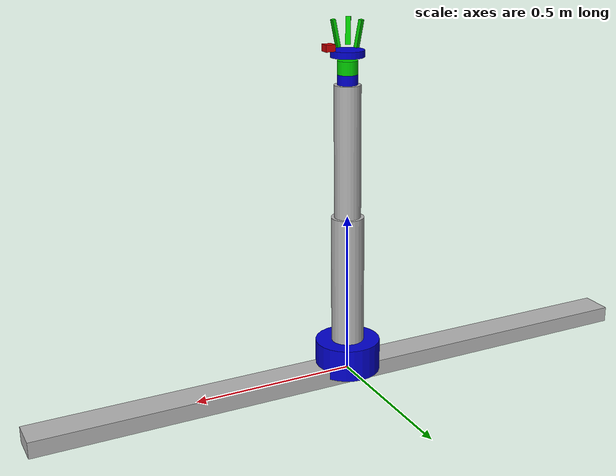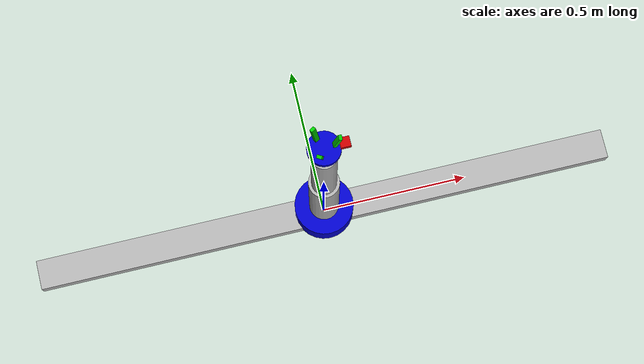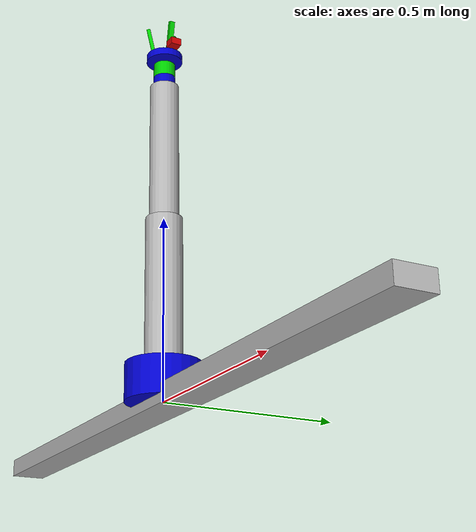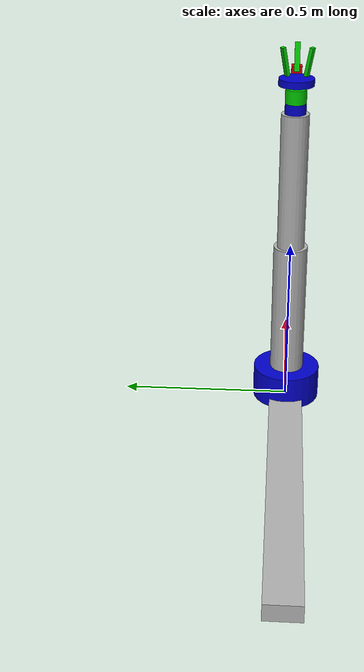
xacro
<?xml version="1.0"?>
<robot xmlns:xacro="http://www.ros.org/wiki/xacro" name="harvest_280">
  <!-- Enable only when a working Gazebo ros2_control backend is available. -->
  <xacro:arg name="use_gz_control" default="false"/>

  <!-- INERTIAL MATH MACROS -->
  <!-- Solid Cylinder Inertia Formula -->
  <xacro:macro name="cylinder_inertial" params="mass radius length *origin">
    <inertial>
      <xacro:insert_block name="origin"/>
      <mass value="${mass}"/>
      <inertia ixx="${(1/12) * mass * (3*radius*radius + length*length)}" ixy="0.0" ixz="0.0"
               iyy="${(1/12) * mass * (3*radius*radius + length*length)}" iyz="0.0"
               izz="${(1/2) * mass * radius * radius}"/>
    </inertial>
  </xacro:macro>

  <!-- Solid Box Inertia Formula -->
  <xacro:macro name="box_inertial" params="mass x y z *origin">
    <inertial>
      <xacro:insert_block name="origin"/>
      <mass value="${mass}"/>
      <inertia ixx="${(1/12) * mass * (y*y + z*z)}" ixy="0.0" ixz="0.0"
               iyy="${(1/12) * mass * (x*x + z*z)}" iyz="0.0"
               izz="${(1/12) * mass * (x*x + y*y)}"/>
    </inertial>
  </xacro:macro>

  <xacro:include filename="$(find harvest_description)/urdf/mech/rail.urdf.xacro"/>
  <xacro:include filename="$(find harvest_description)/urdf/mech/harvest_arm.urdf.xacro"/>
  <xacro:include filename="$(find harvest_description)/urdf/mech/soft_gripper.urdf.xacro"/>

  <!-- Color Materials -->
  <material name="silver"><color rgba="0.7 0.7 0.7 1.0"/></material>
  <material name="blue"><color rgba="0.0 0.0 0.8 1.0"/></material>
  <material name="green"><color rgba="0.0 0.8 0.0 1.0"/></material>
  <material name="red"><color rgba="0.8 0.0 0.0 1.0"/></material>

  <xacro:rail parent_link="world"/>
  <xacro:harvest_arm parent_link="base_link"/>
  <xacro:soft_gripper parent_link="end_effector_tool_mount"/>

  <!-- GAZEBO SIMULATION SYSTEM PLUGIN -->
  <!-- Keep the visual simulation independent from ros2_control startup. -->
  <xacro:if value="$(arg use_gz_control)">
    <gazebo>
      <plugin filename="gz_ros2_control-system" name="gz_ros2_control::GazeboSimROS2ControlPlugin">
        <parameters>$(find harvest_description)/urdf/control/robot_controllers.yaml</parameters>
      </plugin>
    </gazebo>
  </xacro:if>

  <!-- ROS2_CONTROL HARDWARE INTERFACE DEFINITION -->
  <!-- These interfaces are included only for the opt-in controlled launch. -->
  <xacro:if value="$(arg use_gz_control)">
    <ros2_control name="GazeboSimSystem" type="system">
    <hardware>
      <plugin>gz_ros2_control/GazeboSimSystem</plugin>
    </hardware>

    <!-- 1. Rail Linear Actuator -->
    <joint name="rail_joint">
      <command_interface name="position"/>
      <state_interface name="position"/>
    </joint>

    <!-- 2. Base Turn-table (Yaw) -->
    <joint name="base_joint">
      <command_interface name="position"/>
      <state_interface name="position"/>
    </joint>

    <!-- 3. Shoulder (Pitch) -->
    <joint name="shoulder_joint">
      <command_interface name="position"/>
      <state_interface name="position"/>
    </joint>

    <!-- 4. Elbow (Pitch) -->
    <joint name="elbow_joint">
      <command_interface name="position"/>
      <state_interface name="position"/>
    </joint>

    <!-- 5. Wrist Pitch -->
    <joint name="wrist_pitch_joint">
      <command_interface name="position"/>
      <state_interface name="position"/>
    </joint>

    <!-- 6. Wrist Roll -->
    <joint name="wrist_roll_joint">
      <command_interface name="position"/>
      <state_interface name="position"/>
    </joint>
    </ros2_control>
  </xacro:if>

</robot>

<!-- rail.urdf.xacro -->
<robot xmlns:xacro="http://www.ros.org/wiki/xacro">

	<xacro:macro name="rail" params="parent_link">
		<!-- WORLD ANCHOR AND RAIL -->
		<!-- The rail macro owns the single world link used by the whole robot. -->
		<link name="world"/>

		<joint name="world_to_rail" type="fixed">
			<parent link="world"/>
			<child link="rail_link"/>
			<origin xyz="0 0 0" rpy="0 0 0"/>
		</joint>

		<link name="rail_link">
			<visual>
			<geometry><box size="2.0 0.1 0.05"/></geometry>
			<material name="silver"/>
			</visual>
			<collision>
			<geometry><box size="2.0 0.1 0.05"/></geometry>
			</collision>
			<!-- Heavy structural aluminum rail frame (15 kg) -->
			<xacro:box_inertial mass="15.0" x="2.0" y="0.1" z="0.05">
			<origin xyz="0 0 0" rpy="0 0 0"/>
			</xacro:box_inertial>
		</link>

		<!-- 1. Rail Prismatic Joint -->
		<joint name="rail_joint" type="prismatic">
			<parent link="rail_link"/>
			<child link="base_link"/>
			<axis xyz="1 0 0"/>
			<limit lower="-0.9" upper="0.9" effort="200.0" velocity="0.5"/>
			<origin xyz="0 0 0.05" rpy="0 0 0"/>
			<dynamics damping="10.0" friction="5.0"/>
		</joint>
	</xacro:macro>
</robot>

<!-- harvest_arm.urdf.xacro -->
<robot xmlns:xacro="http://www.ros.org/wiki/xacro">

	<xacro:macro name="harvest_arm" params="parent_link">
		  <!-- ARM STRUCTURE -->
		<!-- The arm is attached to the rail carriage through base_link. -->
		<link name="base_link">
			<visual>
			<geometry><cylinder radius="0.1" length="0.1"/></geometry>
			<material name="blue"/>
			</visual>
			<collision>
			<geometry><cylinder radius="0.1" length="0.1"/></geometry>
			</collision>
			<!-- Solid motor base carriage housing (5 kg) -->
			<xacro:cylinder_inertial mass="5.0" radius="0.1" length="0.1">
			<origin xyz="0 0 0" rpy="0 0 0"/>
			</xacro:cylinder_inertial>
		</link>

		<!-- 2. Base Revolute Joint (Yaw) -->
		<joint name="base_joint" type="revolute">
			<parent link="base_link"/>
			<child link="shoulder_link"/>
			<axis xyz="0 0 1"/>
			<limit lower="-3.14" upper="3.14" effort="150.0" velocity="1.0"/>
			<origin xyz="0 0 0.05" rpy="0 0 0"/>
			<dynamics damping="5.0" friction="2.0"/>
		</joint>

		<link name="shoulder_link">
			<visual>
			<origin xyz="0 0 0.2" rpy="0 0 0"/>
			<geometry><cylinder radius="0.05" length="0.4"/></geometry>
			<material name="silver"/>
			</visual>
			<collision>
			<origin xyz="0 0 0.2" rpy="0 0 0"/>
			<geometry><cylinder radius="0.05" length="0.4"/></geometry>
			</collision>
			<!-- Carbon fiber/aluminum lightweight link (2.5 kg) -->
			<xacro:cylinder_inertial mass="2.5" radius="0.05" length="0.4">
			<origin xyz="0 0 0.2" rpy="0 0 0"/>
			</xacro:cylinder_inertial>
		</link>

		<!-- 3. Shoulder Revolute Joint (Pitch) -->
		<joint name="shoulder_joint" type="revolute">
			<parent link="shoulder_link"/>
			<child link="elbow_link"/>
			<axis xyz="0 1 0"/>
			<limit lower="-1.57" upper="1.57" effort="150.0" velocity="1.0"/>
			<origin xyz="0 0 0.4" rpy="0 0 0"/>
			<dynamics damping="5.0" friction="2.0"/>
		</joint>

		<link name="elbow_link">
			<visual>
			<origin xyz="0 0 0.2" rpy="0 0 0"/>
			<geometry><cylinder radius="0.04" length="0.4"/></geometry>
			<material name="silver"/>
			</visual>
			<collision>
			<origin xyz="0 0 0.2" rpy="0 0 0"/>
			<geometry><cylinder radius="0.04" length="0.4"/></geometry>
			</collision>
			<!-- Upper arm link (2.0 kg) -->
			<xacro:cylinder_inertial mass="2.0" radius="0.04" length="0.4">
			<origin xyz="0 0 0.2" rpy="0 0 0"/>
			</xacro:cylinder_inertial>
		</link>

		<!-- 4. Elbow Revolute Joint (Pitch) -->
		<joint name="elbow_joint" type="revolute">
			<parent link="elbow_link"/>
			<child xacro:name="wrist_pitch_link" link="wrist_pitch_link"/>
			<axis xyz="0 1 0"/>
			<limit lower="-2.0" upper="2.0" effort="100.0" velocity="1.0"/>
			<origin xyz="0 0 0.4" rpy="0 0 0"/>
			<dynamics damping="3.0" friction="1.0"/>
		</joint>

		<!-- ================= Universal Wrist (Pitch-Roll) ================= -->
		<link name="wrist_pitch_link">
			<visual>
			<geometry><cylinder radius="0.03" length="0.06"/></geometry>
			<material name="blue"/>
			</visual>
			<collision>
			<geometry><cylinder radius="0.03" length="0.06"/></geometry>
			</collision>
			<!-- Small pitch motor housing (0.8 kg) -->
			<xacro:cylinder_inertial mass="0.8" radius="0.03" length="0.06">
			<origin xyz="0 0 0" rpy="0 0 0"/>
			</xacro:cylinder_inertial>
		</link>

		<!-- 5. Wrist Joint 1 (Pitch) -->
		<joint name="wrist_pitch_joint" type="revolute">
			<parent link="wrist_pitch_link"/>
			<child link="wrist_roll_link"/>
			<axis xyz="0 1 0"/>
			<limit lower="-1.57" upper="1.57" effort="40.0" velocity="1.5"/>
			<origin xyz="0 0 0.05" rpy="0 0 0"/>
			<dynamics damping="1.0" friction="0.5"/>
		</joint>

		<link name="wrist_roll_link">
			<visual>
			<geometry><cylinder radius="0.03" length="0.04"/></geometry>
			<material name="green"/>
			</visual>
			<collision>
			<geometry><cylinder radius="0.03" length="0.04"/></geometry>
			</collision>
			<!-- Small roll motor housing (0.5 kg) -->
			<xacro:cylinder_inertial mass="0.5" radius="0.03" length="0.04">
			<origin xyz="0 0 0" rpy="0 0 0"/>
			</xacro:cylinder_inertial>
		</link>

		<!-- 6. Wrist Joint 2 (Roll) -->
		<joint name="wrist_roll_joint" type="revolute">
			<parent link="wrist_roll_link"/>
			<child link="end_effector_tool_mount"/>
			<axis xyz="0 0 1"/>
			<limit lower="-3.14" upper="3.14" effort="40.0" velocity="1.5"/>
			<origin xyz="0 0 0.04" rpy="0 0 0"/>
			<dynamics damping="1.0" friction="0.5"/>
		</joint>

		<link name="end_effector_tool_mount">
			<visual>
			<geometry><cylinder radius="0.05" length="0.02"/></geometry>
			<material name="blue"/>
			</visual>
			<collision>
			<geometry><cylinder radius="0.05" length="0.02"/></geometry>
			</collision>
			<!-- Tool mount plate (0.3 kg) -->
			<xacro:cylinder_inertial mass="0.3" radius="0.05" length="0.02">
			<origin xyz="0 0 0" rpy="0 0 0"/>
			</xacro:cylinder_inertial>
		</link>
	</xacro:macro>
</robot>

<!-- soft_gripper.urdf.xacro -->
<robot xmlns:xacro="http://www.ros.org/wiki/xacro">
	<xacro:macro name="soft_gripper" params="parent_link">
				<!-- CAMERA AND 3 FINGER GRIPPER -->
		<!-- The tool mount is the attachment point for the camera and fingers. -->
		<!-- Eye-in-Hand Camera Mount -->
		<joint name="camera_joint" type="fixed">
			<parent link="end_effector_tool_mount"/>
			<child link="camera_link"/>
			<origin xyz="0.06 0 0.02" rpy="0 0 0"/>
		</joint>

		<link name="camera_link">
			<visual>
			<geometry><box size="0.03 0.03 0.02"/></geometry>
			<material name="red"/>
			</visual>
			<collision>
			<geometry><box size="0.03 0.03 0.02"/></geometry>
			</collision>
			<!-- Lightweight camera module (0.05 kg / 50 grams) -->
			<xacro:box_inertial mass="0.05" x="0.03" y="0.03" z="0.02">
			<origin xyz="0 0 0" rpy="0 0 0"/>
			</xacro:box_inertial>
		</link>

		<!-- Gripper Finger Macro -->
		<xacro:macro name="finger" params="prefix yaw_angle">
			<joint name="finger_joint_${prefix}" type="fixed">
			<parent link="end_effector_tool_mount"/>
			<child link="finger_link_${prefix}"/>
			<origin xyz="${0.03 * cos(yaw_angle)} ${0.03 * sin(yaw_angle)} 0.02" rpy="0 0.2 ${yaw_angle}"/>
			</joint>

			<link name="finger_link_${prefix}">
			<visual>
				<origin xyz="0 0 0.04" rpy="0 0 0"/>
				<geometry><box size="0.01 0.015 0.08"/></geometry>
				<material name="green"/>
			</visual>
			<collision>
				<origin xyz="0 0 0.04" rpy="0 0 0"/>
				<geometry><box size="0.01 0.015 0.08"/></geometry>
			</collision>
			<!-- Ultra-lightweight soft silicone/rubber finger strand (0.02 kg / 20 grams) -->
			<xacro:box_inertial mass="0.02" x="0.01" y="0.015" z="0.08">
				<origin xyz="0 0 0.04" rpy="0 0 0"/>
			</xacro:box_inertial>
			</link>
		</xacro:macro>

		<!-- Instantiate the 3 soft fingers -->
		<xacro:finger prefix="1" yaw_angle="0.0"/>
		<xacro:finger prefix="2" yaw_angle="2.094"/>
		<xacro:finger prefix="3" yaw_angle="4.188"/>

	</xacro:macro>
</robot>
